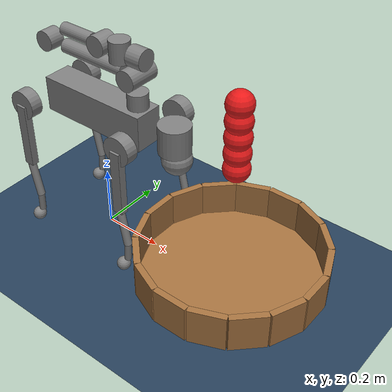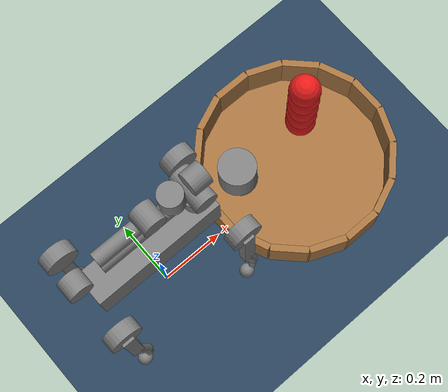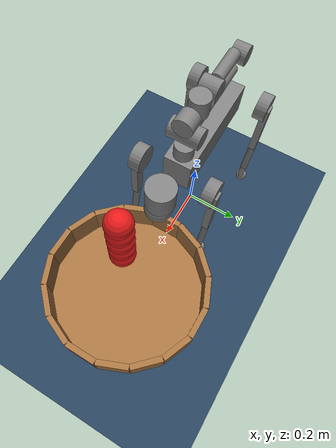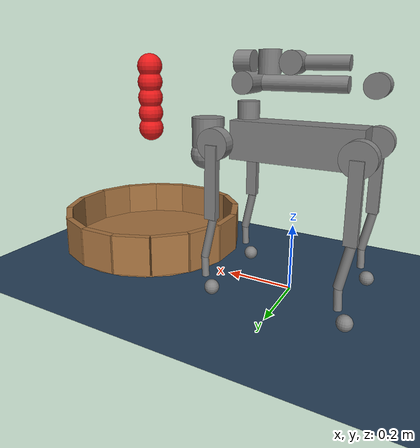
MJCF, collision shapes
<mujoco model="go2_d1 scene">
  <include file="go2_d1.xml"/>

  <statistic center="0.5 0 0.25" extent="1.0"/>

  <visual>
    <headlight diffuse="0.6 0.6 0.6" ambient="0.3 0.3 0.3" specular="0 0 0"/>
    <rgba haze="0.15 0.25 0.35 1"/>
    <global azimuth="-130" elevation="-20"/>
  </visual>

  <asset>
    <texture type="skybox" builtin="gradient" rgb1="0.3 0.5 0.7" rgb2="0 0 0" width="512" height="3072"/>
    <texture type="2d" name="groundplane" builtin="checker" mark="edge" rgb1="0.2 0.3 0.4" rgb2="0.1 0.2 0.3"
      markrgb="0.8 0.8 0.8" width="300" height="300"/>
    <material name="groundplane" texture="groundplane" texuniform="true" texrepeat="5 5" reflectance="0.2"/>
    <material name="red" rgba="0.9 0.1 0.1 1" reflectance="0.3"/>
  </asset>

  <worldbody>
    <light pos="0 0 1.5" dir="0 0 -1" directional="true"/>
    <geom name="floor" size="0 0 0.05" type="plane" material="groundplane"/>
    <!-- Cesta cava (diametro raddoppiato: r=0.28) - fondo + parete a segmenti -->
    <body name="basket" pos="0.5 0 0.06">
      <geom name="basket_bottom" type="cylinder" size="0.28 0.01" rgba="0.65 0.45 0.25 1"
        friction="1.0 0.02 0.01" condim="3"/>
      <geom name="wall_0" type="box" pos="0.2800 0.0000 0.06" quat="0.7071 0 0 0.7071" size="0.055 0.01 0.06" rgba="0.65 0.45 0.25 1" friction="1.0 0.02 0.01" condim="3"/>
      <geom name="wall_1" type="box" pos="0.2587 0.1072 0.06" quat="0.5556 0 0 0.8315" size="0.055 0.01 0.06" rgba="0.65 0.45 0.25 1" friction="1.0 0.02 0.01" condim="3"/>
      <geom name="wall_2" type="box" pos="0.1980 0.1980 0.06" quat="0.3827 0 0 0.9239" size="0.055 0.01 0.06" rgba="0.65 0.45 0.25 1" friction="1.0 0.02 0.01" condim="3"/>
      <geom name="wall_3" type="box" pos="0.1072 0.2587 0.06" quat="0.1951 0 0 0.9808" size="0.055 0.01 0.06" rgba="0.65 0.45 0.25 1" friction="1.0 0.02 0.01" condim="3"/>
      <geom name="wall_4" type="box" pos="0.0000 0.2800 0.06" quat="0.0000 0 0 1.0000" size="0.055 0.01 0.06" rgba="0.65 0.45 0.25 1" friction="1.0 0.02 0.01" condim="3"/>
      <geom name="wall_5" type="box" pos="-0.1072 0.2587 0.06" quat="-0.1951 0 0 0.9808" size="0.055 0.01 0.06" rgba="0.65 0.45 0.25 1" friction="1.0 0.02 0.01" condim="3"/>
      <geom name="wall_6" type="box" pos="-0.1980 0.1980 0.06" quat="-0.3827 0 0 0.9239" size="0.055 0.01 0.06" rgba="0.65 0.45 0.25 1" friction="1.0 0.02 0.01" condim="3"/>
      <geom name="wall_7" type="box" pos="-0.2587 0.1072 0.06" quat="-0.5556 0 0 0.8315" size="0.055 0.01 0.06" rgba="0.65 0.45 0.25 1" friction="1.0 0.02 0.01" condim="3"/>
      <geom name="wall_8" type="box" pos="-0.2800 0.0000 0.06" quat="-0.7071 0 0 0.7071" size="0.055 0.01 0.06" rgba="0.65 0.45 0.25 1" friction="1.0 0.02 0.01" condim="3"/>
      <geom name="wall_9" type="box" pos="-0.2587 -0.1072 0.06" quat="-0.8315 0 0 0.5556" size="0.055 0.01 0.06" rgba="0.65 0.45 0.25 1" friction="1.0 0.02 0.01" condim="3"/>
      <geom name="wall_10" type="box" pos="-0.1980 -0.1980 0.06" quat="-0.9239 0 0 0.3827" size="0.055 0.01 0.06" rgba="0.65 0.45 0.25 1" friction="1.0 0.02 0.01" condim="3"/>
      <geom name="wall_11" type="box" pos="-0.1072 -0.2587 0.06" quat="-0.9808 0 0 0.1951" size="0.055 0.01 0.06" rgba="0.65 0.45 0.25 1" friction="1.0 0.02 0.01" condim="3"/>
      <geom name="wall_12" type="box" pos="-0.0000 -0.2800 0.06" quat="1 0 0 0" size="0.055 0.01 0.06" rgba="0.65 0.45 0.25 1" friction="1.0 0.02 0.01" condim="3"/>
      <geom name="wall_13" type="box" pos="0.1072 -0.2587 0.06" quat="-0.9808 0 0 -0.1951" size="0.055 0.01 0.06" rgba="0.65 0.45 0.25 1" friction="1.0 0.02 0.01" condim="3"/>
      <geom name="wall_14" type="box" pos="0.1980 -0.1980 0.06" quat="-0.9239 0 0 -0.3827" size="0.055 0.01 0.06" rgba="0.65 0.45 0.25 1" friction="1.0 0.02 0.01" condim="3"/>
      <geom name="wall_15" type="box" pos="0.2587 -0.1072 0.06" quat="-0.8315 0 0 -0.5556" size="0.055 0.01 0.06" rgba="0.65 0.45 0.25 1" friction="1.0 0.02 0.01" condim="3"/>
    </body>
    <!-- Palle rosse sopra la cesta - centro al centro del cesto -->
    <body name="red_ball_1" pos="0.5 0 0.45">
      <freejoint/>
      <geom name="ball1" type="sphere" size="0.04" mass="0.04" material="red"
        friction="1.0 0.02 0.01" condim="3"/>
    </body>
    <body name="red_ball_2" pos="0.5 0 0.50">
      <freejoint/>
      <geom name="ball2" type="sphere" size="0.04" mass="0.04" material="red"
        friction="1.0 0.02 0.01" condim="3"/>
    </body>
    <body name="red_ball_3" pos="0.5 0 0.55">
      <freejoint/>
      <geom name="ball3" type="sphere" size="0.04" mass="0.04" material="red"
        friction="1.0 0.02 0.01" condim="3"/>
    </body>
    <body name="red_ball_4" pos="0.5 0 0.60">
      <freejoint/>
      <geom name="ball4" type="sphere" size="0.04" mass="0.04" material="red"
        friction="1.0 0.02 0.01" condim="3"/>
    </body>
    <body name="red_ball_5" pos="0.5 0 0.65">
      <freejoint/>
      <geom name="ball5" type="sphere" size="0.04" mass="0.04" material="red"
        friction="1.0 0.02 0.01" condim="3"/>
    </body>
  </worldbody>
</mujoco>

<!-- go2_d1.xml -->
<mujoco model="go2_d1">
  <compiler angle="radian" meshdir="assets" autolimits="true" />

  <option cone="elliptic" impratio="10" integrator="implicitfast" timestep="0.002" />

  <default>
    <default class="go2">
      <geom friction="0.4" margin="0.001" condim="1"/>
      <joint axis="0 1 0" damping="2" armature="0.05" frictionloss="0.2"/>
      <motor ctrlrange="-23.7 23.7"/>
      <default class="abduction">
        <joint axis="1 0 0" range="-1.0472 1.0472"/>
      </default>
      <default class="hip">
        <default class="front_hip">
          <joint range="-1.5708 3.4907"/>
        </default>
        <default class="back_hip">
          <joint range="-0.5236 4.5379"/>
        </default>
      </default>
      <default class="knee">
        <joint range="-2.7227 -0.83776"/>
        <motor ctrlrange="-45.43 45.43"/>
      </default>
      <default class="visual">
        <geom type="mesh" contype="0" conaffinity="0" group="2"/>
      </default>
      <default class="collision">
        <geom group="3"/>
        <default class="foot">
          <geom size="0.022" pos="-0.002 0 -0.213" priority="1" condim="6"
            friction="0.4 0.02 0.01"/>
        </default>
      </default>
    </default>

    <default class="z1">
      <joint damping="1" frictionloss="1"/>
      <general biastype="affine" gainprm="1000" biasprm="0 -1000 -100" forcerange="-30 30"/>
      <default class="z1_visual">
        <geom type="mesh" group="2" contype="0" conaffinity="0"/>
      </default>
      <default class="z1_collision">
        <geom type="cylinder" group="3" mass="0" density="0"/>
      </default>
    </default>
  </default>

  <asset>
    <material name="metal" rgba=".9 .95 .95 1" />
    <material name="black" rgba="0 0 0 1" />
    <material name="white" rgba="1 1 1 1" />
    <material name="gray" rgba="0.671705 0.692426 0.774270 1" />

    <mesh file="base_0.obj" />
    <mesh file="base_1.obj" />
    <mesh file="base_2.obj" />
    <mesh file="base_3.obj" />
    <mesh file="base_4.obj" />
    <mesh file="hip_0.obj" />
    <mesh file="hip_1.obj" />
    <mesh file="thigh_0.obj" />
    <mesh file="thigh_1.obj" />
    <mesh file="thigh_mirror_0.obj" />
    <mesh file="thigh_mirror_1.obj" />
    <mesh file="calf_0.obj" />
    <mesh file="calf_1.obj" />
    <mesh file="calf_mirror_0.obj" />
    <mesh file="calf_mirror_1.obj" />
    <mesh file="foot.obj" />

    <mesh file="arm/z1_Link00.stl" />
    <mesh file="arm/z1_Link01.stl" />
    <mesh file="arm/z1_Link02.stl" />
    <mesh file="arm/z1_Link03.stl" />
    <mesh file="arm/z1_Link04.stl" />
    <mesh file="arm/z1_Link05.stl" />
    <mesh file="arm/z1_Link06.stl" />
  </asset>

  <worldbody>
    <body name="base_link" pos="0 0 0.445" childclass="go2">
      <inertial pos="0.021112 0 -0.005366" quat="-0.000543471 0.713435 -0.00173769 0.700719"
        mass="6.921"
        diaginertia="0.107027 0.0980771 0.0244531" />
      <freejoint />
      <geom mesh="base_0" material="black" class="visual" />
      <geom mesh="base_1" material="black" class="visual" />
      <geom mesh="base_2" material="black" class="visual" />
      <geom mesh="base_3" material="white" class="visual" />
      <geom mesh="base_4" material="gray" class="visual" />
      <geom size="0.1881 0.04675 0.057" type="box" class="collision" />
      <geom size="0.05 0.045" pos="0.285 0 0.01" type="cylinder" class="collision" />
      <geom size="0.047" pos="0.293 0 -0.06" class="collision" />
      <site name="imu" pos="-0.02557 0 0.04232" />
      <!-- Camera per depth/SLAM (da fork lupinjia/unitree_mujoco) -->
      <camera name="depth_camera" pos="0.315 0 0.09" euler="0 -1.57 -1.57" mode="fixed" fovy="62"/>
      <body name="FL_hip" pos="0.1934 0.0465 0">
        <inertial pos="-0.0054 0.00194 -0.000105" quat="0.497014 0.499245 0.505462 0.498237"
          mass="0.678"
          diaginertia="0.00088403 0.000596003 0.000479967" />
        <joint name="FL_hip_joint" class="abduction" />
        <geom mesh="hip_0" material="metal" class="visual" />
        <geom mesh="hip_1" material="gray" class="visual" />
        <geom size="0.046 0.02" pos="0 0.08 0" quat="1 1 0 0" type="cylinder" class="collision" />
        <body name="FL_thigh" pos="0 0.0955 0">
          <inertial pos="-0.00374 -0.0223 -0.0327" quat="0.829533 0.0847635 -0.0200632 0.551623"
            mass="1.152"
            diaginertia="0.00594973 0.00584149 0.000878787" />
          <joint name="FL_thigh_joint" class="front_hip" />
          <geom mesh="thigh_0" material="metal" class="visual" />
          <geom mesh="thigh_1" material="gray" class="visual" />
          <geom size="0.1065 0.01225 0.017" pos="0 0 -0.1065" quat="0.707107 0 0.707107 0"
            type="box" class="collision" />
          <body name="FL_calf" pos="0 0 -0.213">
            <inertial pos="0.00629595 -0.000622121 -0.141417"
              quat="0.710672 0.00154099 -0.00450087 0.703508"
              mass="0.241352" diaginertia="0.0014901 0.00146356 5.31397e-05" />
            <joint name="FL_calf_joint" class="knee" />
            <geom mesh="calf_0" material="gray" class="visual" />
            <geom mesh="calf_1" material="black" class="visual" />
            <geom size="0.012 0.06" pos="0.008 0 -0.06" quat="0.994493 0 -0.104807 0"
              type="cylinder" class="collision" />
            <geom size="0.011 0.0325" pos="0.02 0 -0.148" quat="0.999688 0 0.0249974 0"
              type="cylinder" class="collision" />
            <geom pos="0 0 -0.213" mesh="foot" class="visual" material="black" />
            <geom name="FL" class="foot" />
            <body name="FL_foot" pos="0 0 -0.213" />
          </body>
        </body>
      </body>
      <body name="FR_hip" pos="0.1934 -0.0465 0">
        <inertial pos="-0.0054 -0.00194 -0.000105" quat="0.498237 0.505462 0.499245 0.497014"
          mass="0.678"
          diaginertia="0.00088403 0.000596003 0.000479967" />
        <joint name="FR_hip_joint" class="abduction" />
        <geom mesh="hip_0" material="metal" class="visual" quat="4.63268e-05 1 0 0" />
        <geom mesh="hip_1" material="gray" class="visual" quat="4.63268e-05 1 0 0" />
        <geom size="0.046 0.02" pos="0 -0.08 0" quat="0.707107 0.707107 0 0" type="cylinder"
          class="collision" />
        <body name="FR_thigh" pos="0 -0.0955 0">
          <inertial pos="-0.00374 0.0223 -0.0327" quat="0.551623 -0.0200632 0.0847635 0.829533"
            mass="1.152"
            diaginertia="0.00594973 0.00584149 0.000878787" />
          <joint name="FR_thigh_joint" class="front_hip" />
          <geom mesh="thigh_mirror_0" material="metal" class="visual" />
          <geom mesh="thigh_mirror_1" material="gray" class="visual" />
          <geom size="0.1065 0.01225 0.017" pos="0 0 -0.1065" quat="0.707107 0 0.707107 0"
            type="box" class="collision" />
          <body name="FR_calf" pos="0 0 -0.213">
            <inertial pos="0.00629595 0.000622121 -0.141417"
              quat="0.703508 -0.00450087 0.00154099 0.710672"
              mass="0.241352" diaginertia="0.0014901 0.00146356 5.31397e-05" />
            <joint name="FR_calf_joint" class="knee" />
            <geom mesh="calf_mirror_0" material="gray" class="visual" />
            <geom mesh="calf_mirror_1" material="black" class="visual" />
            <geom size="0.013 0.06" pos="0.01 0 -0.06" quat="0.995004 0 -0.0998334 0"
              type="cylinder" class="collision" />
            <geom size="0.011 0.0325" pos="0.02 0 -0.148" quat="0.999688 0 0.0249974 0"
              type="cylinder" class="collision" />
            <geom pos="0 0 -0.213" mesh="foot" class="visual" material="black" />
            <geom name="FR" class="foot" />
            <body name="FR_foot" pos="0 0 -0.213" />
          </body>
        </body>
      </body>
      <body name="RL_hip" pos="-0.1934 0.0465 0">
        <inertial pos="0.0054 0.00194 -0.000105" quat="0.505462 0.498237 0.497014 0.499245"
          mass="0.678"
          diaginertia="0.00088403 0.000596003 0.000479967" />
        <joint name="RL_hip_joint" class="abduction" />
        <geom mesh="hip_0" material="metal" class="visual" quat="4.63268e-05 0 1 0" />
        <geom mesh="hip_1" material="gray" class="visual" quat="4.63268e-05 0 1 0" />
        <geom size="0.046 0.02" pos="0 0.08 0" quat="0.707107 0.707107 0 0" type="cylinder"
          class="collision" />
        <body name="RL_thigh" pos="0 0.0955 0">
          <inertial pos="-0.00374 -0.0223 -0.0327" quat="0.829533 0.0847635 -0.0200632 0.551623"
            mass="1.152"
            diaginertia="0.00594973 0.00584149 0.000878787" />
          <joint name="RL_thigh_joint" class="back_hip" />
          <geom mesh="thigh_0" material="metal" class="visual" />
          <geom mesh="thigh_1" material="gray" class="visual" />
          <geom size="0.1065 0.01225 0.017" pos="0 0 -0.1065" quat="0.707107 0 0.707107 0"
            type="box" class="collision" />
          <body name="RL_calf" pos="0 0 -0.213">
            <inertial pos="0.00629595 -0.000622121 -0.141417"
              quat="0.710672 0.00154099 -0.00450087 0.703508"
              mass="0.241352" diaginertia="0.0014901 0.00146356 5.31397e-05" />
            <joint name="RL_calf_joint" class="knee" />
            <geom mesh="calf_0" material="gray" class="visual" />
            <geom mesh="calf_1" material="black" class="visual" />
            <geom size="0.013 0.06" pos="0.01 0 -0.06" quat="0.995004 0 -0.0998334 0"
              type="cylinder" class="collision" />
            <geom size="0.011 0.0325" pos="0.02 0 -0.148" quat="0.999688 0 0.0249974 0"
              type="cylinder" class="collision" />
            <geom pos="0 0 -0.213" mesh="foot" class="visual" material="black" />
            <geom name="RL" class="foot" />
            <body name="RL_foot" pos="0 0 -0.213" />
          </body>
        </body>
      </body>
      <body name="RR_hip" pos="-0.1934 -0.0465 0">
        <inertial pos="0.0054 -0.00194 -0.000105" quat="0.499245 0.497014 0.498237 0.505462"
          mass="0.678"
          diaginertia="0.00088403 0.000596003 0.000479967" />
        <joint name="RR_hip_joint" class="abduction" />
        <geom mesh="hip_0" material="metal" class="visual"
          quat="2.14617e-09 4.63268e-05 4.63268e-05 -1" />
        <geom mesh="hip_1" material="gray" class="visual"
          quat="2.14617e-09 4.63268e-05 4.63268e-05 -1" />
        <geom size="0.046 0.02" pos="0 -0.08 0" quat="0.707107 0.707107 0 0" type="cylinder"
          class="collision" />
        <body name="RR_thigh" pos="0 -0.0955 0">
          <inertial pos="-0.00374 0.0223 -0.0327" quat="0.551623 -0.0200632 0.0847635 0.829533"
            mass="1.152"
            diaginertia="0.00594973 0.00584149 0.000878787" />
          <joint name="RR_thigh_joint" class="back_hip" />
          <geom mesh="thigh_mirror_0" material="metal" class="visual" />
          <geom mesh="thigh_mirror_1" material="gray" class="visual" />
          <geom size="0.1065 0.01225 0.017" pos="0 0 -0.1065" quat="0.707107 0 0.707107 0"
            type="box" class="collision" />
          <body name="RR_calf" pos="0 0 -0.213">
            <inertial pos="0.00629595 0.000622121 -0.141417"
              quat="0.703508 -0.00450087 0.00154099 0.710672"
              mass="0.241352" diaginertia="0.0014901 0.00146356 5.31397e-05" />
            <joint name="RR_calf_joint" class="knee" />
            <geom mesh="calf_mirror_0" material="gray" class="visual" />
            <geom mesh="calf_mirror_1" material="black" class="visual" />
            <geom size="0.013 0.06" pos="0.01 0 -0.06" quat="0.995004 0 -0.0998334 0"
              type="cylinder" class="collision" />
            <geom size="0.011 0.0325" pos="0.02 0 -0.148" quat="0.999688 0 0.0249974 0"
              type="cylinder" class="collision" />
            <geom pos="0 0 -0.213" mesh="foot" class="visual" material="black" />
            <geom name="RR" class="foot" />
            <body name="RR_foot" pos="0 0 -0.213" />
          </body>
        </body>
      </body>
      <!-- Braccio Z1 (placeholder D1) montato su piastra payload -->
      <body name="arm_link00" pos="0.15 0 0.06" childclass="z1">
        <inertial pos="-0.00334984 -0.00013615 0.0249584" quat="-0.00692194 0.682592 0.00133293 0.730766" mass="0.1069"
          diaginertia="0.0001202 0.0000939 0.0000857"/>
        <geom class="z1_visual" mesh="z1_Link00"/>
        <geom size="0.0325 0.0255" pos="0 0 0.0255" class="z1_collision"/>
        <body name="arm_link01" pos="0 0 0.0585">
          <inertial pos="2.47e-06 -0.00025198 0.0231717" quat="0.708578 0.705633 0.000281462 -0.000355927" mass="0.673326"
            diaginertia="0.00128328 0.000839362 0.000719308"/>
          <joint name="arm_joint1" axis="0 0 1" range="-2.61799 2.61799"/>
          <geom class="z1_visual" mesh="z1_Link01"/>
          <body name="arm_link02" pos="0 0 0.045">
            <inertial pos="-0.110126 0.00240029 0.00158266" quat="0.00748058 0.707092 -0.0114473 0.70699" mass="0.2696"
              diaginertia="0.00558 0.00550 0.000227"/>
            <joint name="arm_joint2" axis="0 1 0" range="0 2.96706" damping="2"/>
            <geom class="z1_visual" mesh="z1_Link02"/>
            <geom size="0.0325 0.051" quat="1 1 0 0" class="z1_collision"/>
            <geom size="0.0225 0.1175" pos="-0.1625 0 0" quat="1 0 1 0" class="z1_collision"/>
            <geom size="0.0325 0.0255" pos="-0.35 0 0" quat="1 1 0 0" class="z1_collision"/>
            <body name="arm_link03" pos="-0.35 0 0">
              <inertial pos="0.106092 -0.00541815 0.0347638" quat="0.540557 0.443575 0.426319 0.573839" mass="0.839409"
                diaginertia="0.00954365 0.00938711 0.000558432"/>
              <joint name="arm_joint3" axis="0 1 0" range="-2.87979 0"/>
              <geom class="z1_visual" mesh="z1_Link03"/>
              <geom size="0.02 0.058" pos="0.128 0 0.055" quat="1 0 1 0" class="z1_collision"/>
              <geom size="0.0325 0.0295" pos="0.2205 0 0.055" quat="0.5 -0.5 0.5 0.5" class="z1_collision"/>
              <body name="arm_link04" pos="0.218 0 0.057">
                <inertial pos="0.0436668 0.00364738 -0.00170192" quat="0.0390835 0.726445 -0.0526787 0.684087"
                  mass="0.1276" diaginertia="0.000222 0.000213 0.0000685"/>
                <joint name="arm_joint4" axis="0 1 0" range="-1.51844 1.51844"/>
                <geom class="z1_visual" mesh="z1_Link04"/>
                <geom size="0.0325 0.0335" pos="0.072 0 0" class="z1_collision"/>
                <body name="arm_link05" pos="0.07 0 0">
                  <inertial pos="0.0312153 0 0.00646316" quat="0.462205 0.535209 0.53785 0.45895" mass="0.389385"
                    diaginertia="0.000558961 0.000547317 0.000167332"/>
                  <joint name="arm_joint5" axis="0 0 1" range="-1.3439 1.3439"/>
                  <geom class="z1_visual" mesh="z1_Link05"/>
                  <body name="arm_link06" pos="0.0492 0 0">
                    <inertial pos="0.0241569 -0.00017355 -0.00143876" quat="0.998779 0.0457735 -0.00663717 0.0173548"
                      mass="0.0653" diaginertia="0.0000415 0.0000334 0.0000332"/>
                    <joint name="arm_joint6" axis="1 0 0" range="-2.79253 2.79253"/>
                    <geom class="z1_visual" mesh="z1_Link06"/>
                    <geom size="0.0325 0.0255" pos="0.0255 0 0" quat="1 0 1 0" class="z1_collision"/>
                    <!-- Z1 placeholder arm: offset ≠ D1 mesh. arm_kinematics_d1_template.WRIST_CAMERA_* matches go2_d1_d1mesh.xml (0.1 m). -->
                    <camera name="wrist_camera" pos="0.05 0 0" euler="0 -1.5708 -1.5708" fovy="70" mode="fixed"/>
                  </body>
                </body>
              </body>
            </body>
          </body>
        </body>
      </body>

    </body>
  </worldbody>

  <actuator>
    <motor class="abduction" name="FR_hip" joint="FR_hip_joint" />
    <motor class="hip" name="FR_thigh" joint="FR_thigh_joint" />
    <motor class="knee" name="FR_calf" joint="FR_calf_joint" />
    <motor class="abduction" name="FL_hip" joint="FL_hip_joint" />
    <motor class="hip" name="FL_thigh" joint="FL_thigh_joint" />
    <motor class="knee" name="FL_calf" joint="FL_calf_joint" />
    <motor class="abduction" name="RR_hip" joint="RR_hip_joint" />
    <motor class="hip" name="RR_thigh" joint="RR_thigh_joint" />
    <motor class="knee" name="RR_calf" joint="RR_calf_joint" />
    <motor class="abduction" name="RL_hip" joint="RL_hip_joint" />
    <motor class="hip" name="RL_thigh" joint="RL_thigh_joint" />
    <motor class="knee" name="RL_calf" joint="RL_calf_joint" />

    <general class="z1" name="arm_motor1" joint="arm_joint1" ctrlrange="-2.61799 2.61799"/>
    <general class="z1" name="arm_motor2" joint="arm_joint2" ctrlrange="0 2.96706" forcerange="-60 60" gainprm="1500" biasprm="0 -1500 -150"/>
    <general class="z1" name="arm_motor3" joint="arm_joint3" ctrlrange="-2.87979 0"/>
    <general class="z1" name="arm_motor4" joint="arm_joint4" ctrlrange="-1.51844 1.51844"/>
    <general class="z1" name="arm_motor5" joint="arm_joint5" ctrlrange="-1.3439 1.3439"/>
    <general class="z1" name="arm_motor6" joint="arm_joint6" ctrlrange="-2.79253 2.79253"/>
  </actuator>

  <sensor>
    <jointpos name="FR_hip_pos" joint="FR_hip_joint" />
    <jointpos name="FR_thigh_pos" joint="FR_thigh_joint" />
    <jointpos name="FR_calf_pos" joint="FR_calf_joint" />
    <jointpos name="FL_hip_pos" joint="FL_hip_joint" />
    <jointpos name="FL_thigh_pos" joint="FL_thigh_joint" />
    <jointpos name="FL_calf_pos" joint="FL_calf_joint" />
    <jointpos name="RR_hip_pos" joint="RR_hip_joint" />
    <jointpos name="RR_thigh_pos" joint="RR_thigh_joint" />
    <jointpos name="RR_calf_pos" joint="RR_calf_joint" />
    <jointpos name="RL_hip_pos" joint="RL_hip_joint" />
    <jointpos name="RL_thigh_pos" joint="RL_thigh_joint" />
    <jointpos name="RL_calf_pos" joint="RL_calf_joint" />
    <jointpos name="arm_joint1_pos" joint="arm_joint1" />
    <jointpos name="arm_joint2_pos" joint="arm_joint2" />
    <jointpos name="arm_joint3_pos" joint="arm_joint3" />
    <jointpos name="arm_joint4_pos" joint="arm_joint4" />
    <jointpos name="arm_joint5_pos" joint="arm_joint5" />
    <jointpos name="arm_joint6_pos" joint="arm_joint6" />

    <jointvel name="FR_hip_vel" joint="FR_hip_joint" />
    <jointvel name="FR_thigh_vel" joint="FR_thigh_joint" />
    <jointvel name="FR_calf_vel" joint="FR_calf_joint" />
    <jointvel name="FL_hip_vel" joint="FL_hip_joint" />
    <jointvel name="FL_thigh_vel" joint="FL_thigh_joint" />
    <jointvel name="FL_calf_vel" joint="FL_calf_joint" />
    <jointvel name="RR_hip_vel" joint="RR_hip_joint" />
    <jointvel name="RR_thigh_vel" joint="RR_thigh_joint" />
    <jointvel name="RR_calf_vel" joint="RR_calf_joint" />
    <jointvel name="RL_hip_vel" joint="RL_hip_joint" />
    <jointvel name="RL_thigh_vel" joint="RL_thigh_joint" />
    <jointvel name="RL_calf_vel" joint="RL_calf_joint" />
    <jointvel name="arm_joint1_vel" joint="arm_joint1" />
    <jointvel name="arm_joint2_vel" joint="arm_joint2" />
    <jointvel name="arm_joint3_vel" joint="arm_joint3" />
    <jointvel name="arm_joint4_vel" joint="arm_joint4" />
    <jointvel name="arm_joint5_vel" joint="arm_joint5" />
    <jointvel name="arm_joint6_vel" joint="arm_joint6" />
    <jointactuatorfrc name="FR_hip_torque" joint="FR_hip_joint" noise="0.01" />
    <jointactuatorfrc name="FR_thigh_torque" joint="FR_thigh_joint" noise="0.01" />
    <jointactuatorfrc name="FR_calf_torque" joint="FR_calf_joint" noise="0.01" />
    <jointactuatorfrc name="FL_hip_torque" joint="FL_hip_joint" noise="0.01" />
    <jointactuatorfrc name="FL_thigh_torque" joint="FL_thigh_joint" noise="0.01" />
    <jointactuatorfrc name="FL_calf_torque" joint="FL_calf_joint" noise="0.01" />
    <jointactuatorfrc name="RR_hip_torque" joint="RR_hip_joint" noise="0.01" />
    <jointactuatorfrc name="RR_thigh_torque" joint="RR_thigh_joint" noise="0.01" />
    <jointactuatorfrc name="RR_calf_torque" joint="RR_calf_joint" noise="0.01" />
    <jointactuatorfrc name="RL_hip_torque" joint="RL_hip_joint" noise="0.01" />
    <jointactuatorfrc name="RL_thigh_torque" joint="RL_thigh_joint" noise="0.01" />
    <jointactuatorfrc name="RL_calf_torque" joint="RL_calf_joint" noise="0.01" />
    <jointactuatorfrc name="arm_joint1_torque" joint="arm_joint1" noise="0.01" />
    <jointactuatorfrc name="arm_joint2_torque" joint="arm_joint2" noise="0.01" />
    <jointactuatorfrc name="arm_joint3_torque" joint="arm_joint3" noise="0.01" />
    <jointactuatorfrc name="arm_joint4_torque" joint="arm_joint4" noise="0.01" />
    <jointactuatorfrc name="arm_joint5_torque" joint="arm_joint5" noise="0.01" />
    <jointactuatorfrc name="arm_joint6_torque" joint="arm_joint6" noise="0.01" />

    <framequat name="imu_quat" objtype="site" objname="imu" />
    <gyro name="imu_gyro" site="imu" />
    <accelerometer name="imu_acc" site="imu" />

    <framepos name="frame_pos" objtype="site" objname="imu" />
    <framelinvel name="frame_vel" objtype="site" objname="imu" />
  </sensor>

  <keyframe>
    <key name="home" qpos="0 0 0.27 1 0 0 0 0.006 0.82 -1.50 -0.006 0.82 -1.50 0.006 1.08 -1.82 -0.006 1.08 -1.82 0 0.2 -0.4 -0.2 0 0"
      ctrl="0.006 0.82 -1.50 -0.006 0.82 -1.50 0.006 1.08 -1.82 -0.006 1.08 -1.82 0 0.2 -0.4 -0.2 0 0" />
  </keyframe>
</mujoco>
